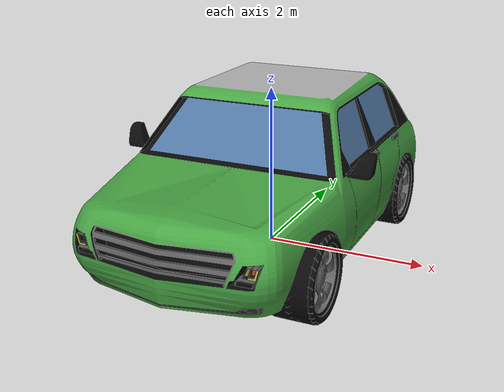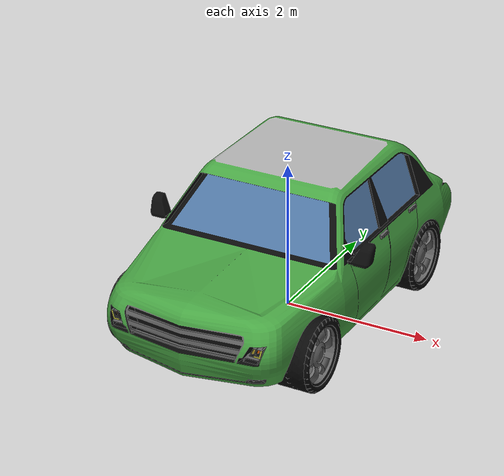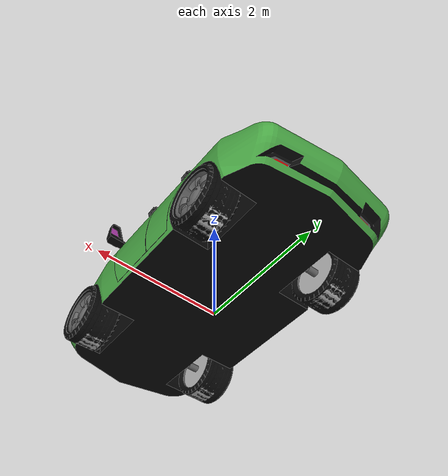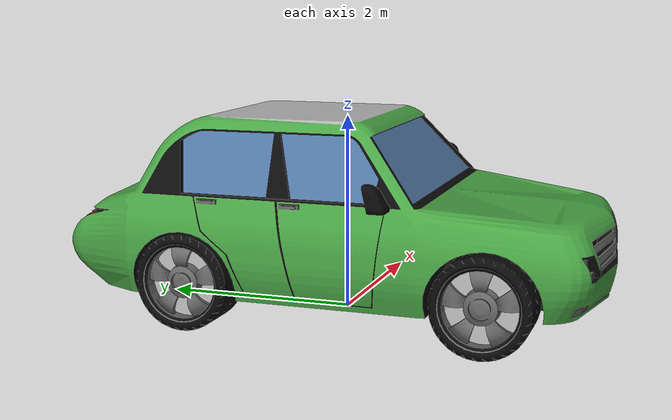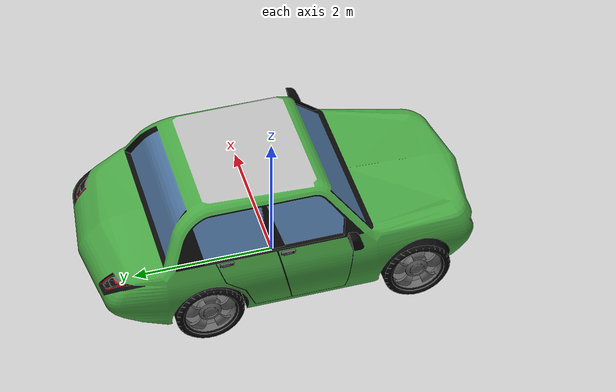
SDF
<?xml version='1.0'?>
<sdf version="1.4">
<model name="carApriltag">
  <pose>0 0 0 0 0 0</pose>
  <static>false</static>
    <link name="car">
    	<pose>0 0 0.749745 0 0 0</pose>
      <collision name="collision">
            <geometry>
              <mesh>
            		<uri>model://carApriltag/meshes/model.dae</uri>
          		</mesh>
            </geometry>
       </collision>
      <visual name="visual">
        <geometry>
          <mesh>
            <uri>model://carApriltag/meshes/model.dae</uri>
          </mesh>
        </geometry>
      </visual>
    </link>
    <link name="front_right_wheel">
        <pose>1.1 -1.70000 0.448000 0 1.5707 0</pose>
        <collision name="collision">
          <geometry>
            <cylinder>
              <radius>.45</radius>
              <length>.3</length>
            </cylinder>
          </geometry>
        </collision>
        <visual name="visual">
          <geometry>
            <cylinder>
              <radius>.45</radius>
              <length>.3</length>
            </cylinder>
          </geometry>
        </visual>
      </link>
      <link name="front_left_wheel">
        <pose>-1.100000 -1.70000 0.448000 0 1.5707 0</pose>
        <collision name="collision">
          <geometry>
            <cylinder>
              <radius>.45</radius>
              <length>.3</length>
            </cylinder>
          </geometry>
        </collision>
        <visual name="visual">
          <geometry>
            <cylinder>
              <radius>.45</radius>
              <length>.3</length>
            </cylinder>
          </geometry>
        </visual>
      </link>

      <link name="front_left_steering_wheel_block">
        <pose>-1.100000 -1.70000 0.448000 0 1.5707 0</pose>
        <collision name="collision">
          <geometry>
            <cylinder>
              <radius>0.05</radius>
              <length>0.1</length>
            </cylinder>
          </geometry>
        </collision>
        <visual name="visual">
          <geometry>
            <cylinder>
              <radius>0.05</radius>
              <length>0.1</length>
            </cylinder>
          </geometry>
        </visual>
		</link>

        <link name="front_right_steering_wheel_block">
        <pose> 1.100000 -1.70000 0.448000 0 1.5707 0</pose>
        <collision name="collision">
          <geometry>
            <cylinder>
              <radius>0.05</radius>
              <length>0.1</length>
            </cylinder>
          </geometry>
        </collision>
        <visual name="visual">
          <geometry>
            <cylinder>
              <radius>0.05</radius>
              <length>0.1</length>
            </cylinder>
          </geometry>
        </visual>
      </link>

      <link name="rear_left_wheel">
        <pose>1.1 1.242288 0.448000 0 1.5707 0</pose>
        <collision name="collision">
          <geometry>
            <cylinder>
              <radius>.45</radius>
              <length>.3</length>
            </cylinder>
          </geometry>
        </collision>
        <visual name="visual">
          <geometry>
            <cylinder>
              <radius>.45</radius>
              <length>.3</length>
            </cylinder>
          </geometry>
        </visual>
      </link>

      <link name="rear_right_wheel">
        <pose>-1.1 1.242288 0.448000 0 1.5707 0</pose>
        <collision name="collision">
          <geometry>
            <cylinder>
              <radius>.45</radius>
              <length>.3</length>
            </cylinder>
          </geometry>
        </collision>
        <visual name="visual">
          <geometry>
            <cylinder>
              <radius>.45</radius>
              <length>.3</length>
            </cylinder>
          </geometry>
        </visual>
      </link>

       <joint type="revolute" name="front_left_wheel_hinge">
        <pose>0 0 0 0 0 0</pose>
        <child>front_left_wheel</child>
        <parent>front_left_steering_wheel_block</parent>
        <axis>
          <xyz>1 0 0</xyz>
        </axis>
      </joint>
      <joint type="revolute" name="front_right_wheel_hinge">
        <pose>0 0 0 0 0 0</pose>
        <child>front_right_wheel</child>
        <parent>front_right_steering_wheel_block</parent>
        <axis>
          <xyz>1 0 0</xyz>
        </axis>
      </joint>

      <joint type="revolute" name="front_left_steering_wheel">
        <pose>0 0 0 0 0 0</pose>
        <child>front_left_steering_wheel_block</child>
        <parent>car</parent>
        <axis>
        	 <xyz>0 0 1</xyz>
        	 <limit>
              <lower>-0.52359</lower>
              <upper>0.52359</upper>
          </limit>
        </axis>
      </joint>
      <joint type="revolute" name="front_right_steering_wheel">
        <pose>0 0 0 0 0 0</pose>
        <child>front_right_steering_wheel_block</child>
        <parent>car</parent>
        <axis>
        <xyz>0 0 1</xyz>
     		 <limit>
              <lower>-0.52359</lower>
              <upper>0.52359</upper>
          </limit>
        </axis>
      </joint>

      <joint type="revolute" name="rear_right_wheel_hinge">
        <pose>0 0 0 0 0 0</pose>
        <child>rear_right_wheel</child>
        <parent>car</parent>
        <axis>
          <xyz>1 0 0</xyz>
        </axis>
      </joint>

      <joint type="revolute" name="rear_left_wheel_hinge">
        <pose>0 0 0 0 0 0</pose>
        <child>rear_left_wheel</child>
        <parent>car</parent>
        <axis>
          <xyz>1 0 0</xyz>
        </axis>
      </joint>
  </model>
</sdf>
